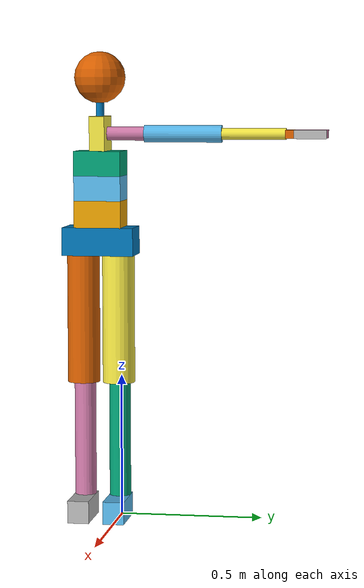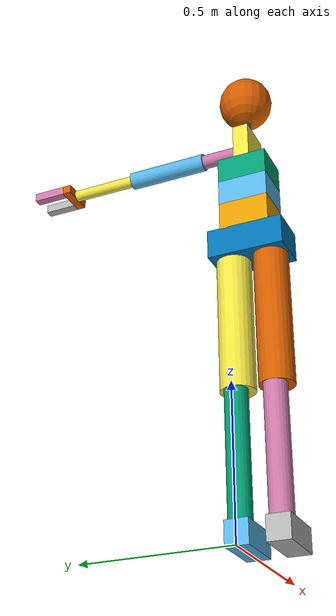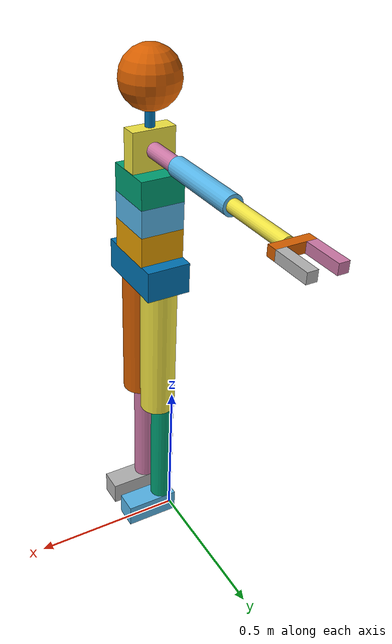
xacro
<?xml version="1.0" ?>

<robot name="mhuman" xmlns:xacro="http://www.ros.org/wiki/xacro">

   <link name="world"/>

   <joint name="jdummy" type="fixed">
     <parent link="world"/>
     <child link="right_foot"/>
   </joint>

   <!-- Lower Body pelvis and both legs and feet -->

   <link name="right_foot">

        <inertial>
          <mass value="0.8086"/>
          <origin xyz="0.08991 0 0.03925" rpy="0 0 0" />
          <inertia ixx="0.00079209" iyy="0.0025944" izz="0.0025558" ixy="0" ixz="0" iyz="0"/>
        </inertial>

        <collision>
          <origin xyz="0.08991 0 0.03925" rpy="0 0 0" />
          <geometry>
             <box size="0.17983    0.074775    0.078509"/>
          </geometry>
        </collision>

        <visual>
          <origin xyz="0.08991 0 0.03925" rpy="0 0 0" />
          <geometry>
             <box size="0.17983    0.074775    0.078509"/>
          </geometry>
        </visual>

   </link>

   <joint name="jright_ankle" type="fixed">
     <origin xyz="0.018694 0 0.078509" rpy="0 0 0"/>
     <parent link="right_foot"/>
     <child link="right_lower_leg"/>
   </joint>

   <link name="right_lower_leg">

        <inertial>
          <mass value="2.2703"/>
          <origin xyz="0.018694 0 0.20304" rpy="0 0 0" />
          <inertia ixx="0.031992" iyy="0.031992" izz="0.0015867" ixy="0" ixz="0" iyz="0"/>
        </inertial>

        <collision>
          <origin xyz="0.018694 0 0.20304" rpy="0 0 0" />
          <geometry>
             <cylinder length="0.40608" radius="0.037388"/>
          </geometry>
        </collision>

        <visual>
          <origin xyz="0.018694 0 0.20304" rpy="0 0 0" />
          <geometry>
             <cylinder length="0.40608" radius="0.037388"/>
          </geometry>
        </visual>
   </link>

   <joint name="jright_knee" type="fixed">
     <origin xyz="0.018694 0 0.40608" rpy="0 0 0"/>
     <parent link="right_lower_leg"/>
     <child link="right_upper_leg"/>
   </joint>

   <link name="right_upper_leg">

        <inertial>
          <mass value="7.775"/>
          <origin xyz="0.018694 0 0.22449" rpy="0 0 0" />
          <inertia ixx="0.13681" iyy="0.13681" izz="0.01241" ixy="0" ixz="0" iyz="0"/>
        </inertial>

        <collision>
          <origin xyz="0.018694 0 0.22449" rpy="0 0 0" />
          <geometry>
             <cylinder length="0.44898" radius="0.0565"/>
          </geometry>
        </collision>

        <visual>
          <origin xyz="0.018694 0 0.22449" rpy="0 0 0" />
          <geometry>
             <cylinder length="0.44898" radius="0.0565"/>
          </geometry>
        </visual>
   </link>

   <joint name="jright_hip" type="fixed">
     <origin xyz="0.018694 0 0.44898" rpy="0 0 0"/>
     <parent link="right_upper_leg"/>
     <child link="pelvis"/>
   </joint>

   <link name="pelvis">

        <inertial>
          <mass value="4.976"/>
          <origin xyz="0 -0.062285 0.0487345" rpy="0 0 0" />
          <inertia ixx="0.029678" iyy="0.011854" izz="0.033653" ixy="0" ixz="0" iyz="0"/>
        </inertial>

        <collision>
          <origin xyz="0 -0.062285 0.0487345" rpy="0 0 0" />
          <geometry>
             <box size="0.13815     0.24914    0.097469"/>
          </geometry>
        </collision>

        <visual>
          <origin xyz="0 -0.062285 0.0487345" rpy="0 0 0" />
          <geometry>
             <box size="0.13815     0.24914    0.097469"/>
          </geometry>
        </visual>

   </link>

   <joint name="jleft_hip" type="fixed">
     <origin xyz="0 -0.118785 0" rpy="0 0 0"/>
     <parent link="pelvis"/>
     <child link="left_upper_leg"/>
   </joint>
   <link name="left_upper_leg">

        <inertial>
          <mass value="7.775"/>
          <origin xyz="0 -0.005785 -0.22449" rpy="0 0 0" />
          <inertia ixx="0.13681" iyy="0.13681" izz="0.01241" ixy="0" ixz="0" iyz="0"/>
        </inertial>

        <collision>
          <origin xyz="0 -0.005785 -0.22449" rpy="0 0 0" />
          <geometry>
             <cylinder length="0.44898" radius="0.0565"/>
          </geometry>
        </collision>

        <visual>
          <origin xyz="0 -0.005785 -0.22449" rpy="0 0 0" />
          <geometry>
             <cylinder length="0.44898" radius="0.0565"/>
          </geometry>
        </visual>

   </link>

   <joint name="jleft_knee" type="fixed">
     <origin xyz="-0.018694 0 -0.44898" rpy="0 0 0"/>
     <parent link="left_upper_leg"/>
     <child link="left_lower_leg"/>
   </joint>
   <link name="left_lower_leg">

        <inertial>
          <mass value="2.2703"/>
          <origin xyz="0 -0.005785 -0.20304" rpy="0 0 0" />
          <inertia ixx="0.031992" iyy="0.031992" izz="0.0015867" ixy="0" ixz="0" iyz="0"/>
        </inertial>

        <collision>
          <origin xyz="0 -0.005785 -0.20304" rpy="0 0 0" />
          <geometry>
             <cylinder length="0.40608" radius="0.037388"/>
          </geometry>
        </collision>

        <visual>
          <origin xyz="0 -0.005785 -0.20304" rpy="0 0 0" />
          <geometry>
             <cylinder length="0.40608" radius="0.037388"/>
          </geometry>
        </visual>

   </link>

   <joint name="jleft_ankle" type="fixed">
     <origin xyz="-0.018694 0 -0.40608" rpy="0 0 0"/>
     <parent link="left_lower_leg"/>
     <child link="left_foot"/>
   </joint>

   <link name="left_foot">

        <inertial>
           <mass value="0.8086"/>
           <origin xyz="0.071216 -0.005785 -0.03925" rpy="0 0 0" />
           <inertia ixx="0.00079209" iyy="0.0025944" izz="0.0025558" ixy="0" ixz="0" iyz="0"/>
        </inertial>

        <collision>
          <origin xyz="0.071216 -0.005785 -0.03925" rpy="0 0 0" />
          <geometry>
             <box size="0.17983    0.074775    0.078509"/>
          </geometry>
        </collision>

        <visual>
          <origin xyz="0.071216 -0.005785 -0.03925" rpy="0 0 0" />
          <geometry>
             <box size="0.17983    0.074775    0.078509"/>
          </geometry>
        </visual>

   </link>

<!-- Upper Body from pelvis to head without arms -->

   <!-- Joint b/w pelvis and Link L5 -->
   <joint name="jtrunk_bottom" type="fixed">
     <origin xyz="0 -0.062285 0.095104" rpy="0 0 0"/>
     <parent link="pelvis"/>
     <child link="trunk_bottom"/>
   </joint>

    <!-- Link L5 -->
    <link name="trunk_bottom">

        <inertial>
           <mass value="6.3444"/>
           <origin xyz="0 0 0.047552" rpy="0 0 0" />
           <inertia ixx="0.018868" iyy="0.014872" izz="0.024177" ixy="0" ixz="0" iyz="0"/>
        </inertial>

        <collision>
          <origin xyz="0 0 0.047552" rpy="0 0 0" />
          <geometry>
             <box size="0.13815     0.16323    0.095104"/>
          </geometry>
        </collision>

        <visual>
          <origin xyz="0 0 0.047552" rpy="0 0 0" />
          <geometry>
             <box size="0.13815     0.16323    0.095104"/>
          </geometry>
        </visual>
   </link>

   <!-- Joint b/w pelvis and Link L3 -->
   <joint name="jtrunk_center" type="fixed">
     <origin xyz="0 0 0.095104" rpy="0 0 0"/>
     <parent link="trunk_bottom"/>
     <child link="trunk_center"/>
   </joint>
   <!-- Link L3 -->
   <link name="trunk_center">

        <inertial>
           <mass value="6.3444"/>
           <origin xyz="0 0 0.042958" rpy="0 0 0" />
           <inertia ixx="0.017989" iyy="0.013993" izz="0.024177" ixy="0" ixz="0" iyz="0"/>
        </inertial>

        <collision>
          <origin xyz="0 0 0.042958" rpy="0 0 0" />
          <geometry>
             <box size="0.13815     0.16323    0.095104"/>
          </geometry>
        </collision>

        <visual>
          <origin xyz="0 0 0.042958" rpy="0 0 0" />
          <geometry>
             <box size="0.13815     0.16323    0.085916"/>
          </geometry>
        </visual>
   </link>

     <!-- Joint b/w pelvis and Link T12 -->
     <joint name="jtrunk_ptop" type="fixed">
     <origin xyz="0 0 0.085916" rpy="0 0 0"/>
     <parent link="trunk_center"/>
     <child link="trunk_ptop"/>
   </joint>
     <!-- Link T12 -->
    <link name="trunk_ptop">

        <inertial>
           <mass value="6.3444"/>
           <origin xyz="0 0 0.042958" rpy="0 0 0" />
           <inertia ixx="0.017989" iyy="0.013993" izz="0.024177" ixy="0" ixz="0" iyz="0"/>
        </inertial>

        <collision>
          <origin xyz="0 0 0.042958" rpy="0 0 0" />
          <geometry>
             <box size="0.13815     0.16323    0.085916"/>
          </geometry>
        </collision>

        <visual>
          <origin xyz="0 0 0.042958" rpy="0 0 0" />
          <geometry>
             <box size="0.13815     0.16323    0.085916"/>
          </geometry>
        </visual>
   </link>

   <!-- Joint b/w pelvis and Link T8 -->
   <joint name="jtrunk_top" type="fixed">
     <origin xyz="0 0 0.085916" rpy="0 0 0"/>
     <parent link="trunk_ptop"/>
     <child link="trunk_top"/>
   </joint>
   <!-- Link T8 -->
   <link name="trunk_top">

        <inertial>
           <mass value="2.488"/>
           <origin xyz="0 0 0.059875" rpy="0 0 0" />
           <inertia ixx="0.0035473" iyy="0.0067278" izz="0.0043289" ixy="0" ixz="0" iyz="0"/>
        </inertial>

        <collision>
          <origin xyz="0 0 0.059875" rpy="0 0 0" />
          <geometry>
             <box size="0.13457    0.052626     0.11975"/>
          </geometry>
        </collision>

        <visual>
          <origin xyz="0 0 0.059875" rpy="0 0 0" />
          <geometry>
             <box size="0.13457    0.052626     0.11975"/>
          </geometry>
        </visual>
   </link>

   <joint name="jneck" type="fixed">
     <origin xyz="0 0 0.11975" rpy="0 0 0"/>
     <parent link="trunk_top"/>
     <child link="neck"/>
   </joint>
   <link name="neck">

        <inertial>
           <mass value="0.7464"/>
           <origin xyz="0 0 0.044626" rpy="0 0 0" />
           <inertia ixx="0.0006461" iyy="0.0006461" izz="0.00030124" ixy="0" ixz="0" iyz="0"/>
        </inertial>

        <collision>
          <origin xyz="0 0 0.044626" rpy="0 0 0" />
          <geometry>
             <cylinder length="0.089252" radius="0.014205"/>
          </geometry>
        </collision>

        <visual>
          <origin xyz="0 0 0.044626" rpy="0 0 0" />
          <geometry>
             <cylinder length="0.089252" radius="0.014205"/>
          </geometry>
        </visual>
   </link>

   <joint name="jhead" type="fixed">
     <origin xyz="0 0 0.089252" rpy="0 0 0"/>
     <parent link="neck"/>
     <child link="head"/>
   </joint>
   <link name="head">

        <inertial>
           <mass value="2.2392"/>
           <origin xyz="0 0 0.0445025" rpy="0 0 0" />
           <inertia ixx="0.0070955" iyy="0.0070955" izz="0.0070955" ixy="0" ixz="0" iyz="0"/>
        </inertial>

        <collision>
          <origin xyz="0 0 0.0445025" rpy="0 0 0" />
          <geometry>
             <sphere radius="0.089005"/>
          </geometry>
        </collision>

          <visual>
          <origin xyz="0 0 0.0445025" rpy="0 0 0" />
          <geometry>
             <sphere radius="0.089005"/>
          </geometry>
        </visual>
   </link>

   <!--  Links from Right shoulder to hand-->

   <joint name="jright_shoulder" type="fixed">
       <origin xyz="0 0.026313 0.059875" rpy="0 0 0"/>
     <parent link="trunk_top"/>
     <child link="right_shoulder"/>
   </joint>
   <link name="right_shoulder">

        <inertial>
           <mass value="1.9282"/>
           <origin xyz="0 0.065235 0" rpy="1.5708 0 0" />
           <inertia ixx="0.0030029" iyy="0.00053578" izz="0.0030029" ixy="0" ixz="0" iyz="0"/>
        </inertial>

        <collision>
          <origin xyz="0 0.065235 0" rpy="1.5708 0 0" />
          <geometry>
             <cylinder length="0.13047" radius="0.023574"/>
          </geometry>
        </collision>

        <visual>
          <origin xyz="0 0.065235 0" rpy="1.5708 0 0" />
          <geometry>
             <cylinder length="0.13047" radius="0.023574"/>
          </geometry>
        </visual>
   </link>

<!--   ***************changes made with dummy link and joints at shoulder start ********************************   -->

    <joint name="jright_shoulder_rotz" type="revolute">
        <origin xyz="0    0.13047           0" rpy="0 0 0"/>
        <parent link="right_shoulder"/>
        <child link="right_upper_arm_f1"/>
        <limit effort="100" velocity="0.5" lower="-1.5708" upper="0.785398" />
        <dynamics damping="0.01" friction="0.01"/>
        <axis xyz="0 0 1" />
    </joint>

   <transmission name="trans_jright_shoulder_rotz">
     <type>transmission_interface/SimpleTransmission</type>
     <joint name="jright_shoulder_rotz">
       <hardwareInterface>hardware_interface/PositionJointInterface</hardwareInterface>
     </joint>
     <actuator name="motor_jright_shoulder_rotz">
       <hardwareInterface>hardware_interface/PositionJointInterface</hardwareInterface>
       <mechanicalReduction>1</mechanicalReduction>
     </actuator>
   </transmission>

    <link name="right_upper_arm_f1">
        <inertial>
            <mass value="0.0001"/>
            <origin xyz="0 0.065235 0" rpy="1.5708 0 0" />
            <inertia ixx="0.0003" iyy="0.0003" izz="0.0003" ixy="0" ixz="0" iyz="0"/>
        </inertial>
    </link>

    <joint name="jright_shoulder_roty" type="revolute">
        <origin xyz="0 0 0" rpy="0 0 0"/>
        <parent link="right_upper_arm_f1"/>
        <child link="right_upper_arm_f2"/>
        <limit effort="100" velocity="0.5" lower="-1.5708" upper="1.5708" />
        <dynamics damping="0.01" friction="0.01"/>
        <axis xyz="0 1 0" />
    </joint>

   <transmission name="trans_jright_shoulder_roty">
     <type>transmission_interface/SimpleTransmission</type>
     <joint name="jright_shoulder_roty">
       <hardwareInterface>hardware_interface/PositionJointInterface</hardwareInterface>
     </joint>
     <actuator name="motor_jright_shoulder_roty">
       <hardwareInterface>hardware_interface/PositionJointInterface</hardwareInterface>
       <mechanicalReduction>1</mechanicalReduction>
     </actuator>
   </transmission>

    <link name="right_upper_arm_f2">
        <inertial>
            <mass value="0.0001"/>
            <origin xyz="0 0.065235 0" rpy="1.5708 0 0" />
            <inertia ixx="0.0003" iyy="0.0003" izz="0.0003" ixy="0" ixz="0" iyz="0"/>
        </inertial>
    </link>

    <joint name="jright_shoulder_rotx" type="revolute">
        <origin xyz="0 0 0" rpy="0 0 0"/>
        <parent link="right_upper_arm_f2"/>
        <child link="right_upper_arm"/>
        <limit effort="100" velocity="0.5" lower="-1.5708" upper="0.5236" />
        <dynamics damping="0.01" friction="0.01"/>
        <axis xyz="1 0 0" />
    </joint>

   <transmission name="trans_jright_shoulder_rotx">
     <type>transmission_interface/SimpleTransmission</type>
     <joint name="jright_shoulder_rotx">
       <hardwareInterface>hardware_interface/PositionJointInterface</hardwareInterface>
     </joint>
     <actuator name="motor_jright_shoulder_rotx">
       <hardwareInterface>hardware_interface/PositionJointInterface</hardwareInterface>
       <mechanicalReduction>1</mechanicalReduction>
     </actuator>
   </transmission>

<!--   ***************changes made with dummy link and joints at shoulder end *********************************   -->

   <link name="right_upper_arm">

        <inertial>
           <mass value="1.866"/>
           <origin xyz="0 0.13497 0" rpy="1.5708 0 0" />
           <inertia ixx="0.011736" iyy="0.00080917" izz="0.011736" ixy="0" ixz="0" iyz="0"/>
        </inertial>

        <collision>
          <origin xyz="0 0.13497 0" rpy="1.5708 0 0" />
          <geometry>
             <cylinder length="0.26994" radius="0.029449"/>
          </geometry>
        </collision>

        <visual>
          <origin xyz="0 0.13497 0" rpy="1.5708 0 0" />
          <geometry>
             <cylinder length="0.26994" radius="0.029449"/>
          </geometry>
        </visual>
   </link>

   <joint name="jright_forearm_rotz" type="revolute">
     <axis xyz="0 0 1"/>
     <limit effort="100" velocity="0.5" lower="-2.5307" upper="0" />
     <dynamics damping="0.01" friction="0.01"/>
     <origin xyz="0 0.26994 0" rpy="0 0 0"/>
     <parent link="right_upper_arm"/>
     <child link="right_forearm_f1"/>
   </joint>

   <transmission name="trans_jright_forearm_rotz">
     <type>transmission_interface/SimpleTransmission</type>
     <joint name="jright_forearm_rotz">
       <hardwareInterface>hardware_interface/PositionJointInterface</hardwareInterface>
     </joint>
     <actuator name="motor_jright_forearm_rotz">
       <hardwareInterface>hardware_interface/PositionJointInterface</hardwareInterface>
       <mechanicalReduction>1</mechanicalReduction>
     </actuator>
   </transmission>
<!-- **************** changes made with dummy link and joints at elbow start ***************************  -->

    <link name="right_forearm_f1">
        <inertial>
            <mass value="0.0001"/>
            <origin xyz="0 0 0" rpy="0 0 0" />
            <inertia ixx="0.0003" iyy="0.0003" izz="0.0003" ixy="0" ixz="0" iyz="0"/>
        </inertial>
    </link>

     <joint name="jright_forearm_roty" type="revolute">
        <origin xyz="0    0           0" rpy="0 0 0"/>
        <parent link="right_forearm_f1"/>
        <child link="right_forearm"/>
        <limit effort="100" velocity="0.5" lower="-1.5708" upper="1.48353" />
        <dynamics damping="0.01" friction="0.01"/>
        <axis xyz="0 1 0" />
    </joint>

   <transmission name="trans_jright_forearm_roty">
     <type>transmission_interface/SimpleTransmission</type>
     <joint name="jright_forearm_roty">
       <hardwareInterface>hardware_interface/PositionJointInterface</hardwareInterface>
     </joint>
     <actuator name="motor_jright_forearm_roty">
       <hardwareInterface>hardware_interface/PositionJointInterface</hardwareInterface>
       <mechanicalReduction>1</mechanicalReduction>
     </actuator>
   </transmission>

<!-- **************** changes made with dummy link and joints at elbow end ***************************  -->

   <link name="right_forearm">

        <inertial>
           <mass value="1.244"/>
           <origin xyz="0 0.111235 0" rpy="-1.5708 0 0" />
           <inertia ixx="0.0052508" iyy="0.00023975" izz="0.0052508" ixy="0" ixz="0" iyz="0"/>
        </inertial>

        <collision>
          <origin xyz="0 0.111235 0" rpy="-1.5708 0 0" />
          <geometry>
             <cylinder length="0.22247" radius="0.019633"/>
          </geometry>
        </collision>

        <visual>
          <origin xyz="0 0.111235 0" rpy="-1.5708 0 0" />
          <geometry>
             <cylinder length="0.22247" radius="0.019633"/>
          </geometry>
        </visual>
   </link>

   <joint name="jright_wrist_rotx" type="revolute">
     <axis xyz="1 0 0"/>
     <limit effort="100" velocity="0.5" lower="-0.872665" upper="1.0472" />
     <dynamics damping="0.01" friction="0.01"/>
     <origin xyz="0 0.22247 0" rpy="0 -1.5708 0"/>
     <parent link="right_forearm"/>
     <child link="right_wrist_f1"/>
   </joint>

   <transmission name="trans_jright_wrist_rotx">
     <type>transmission_interface/SimpleTransmission</type>
     <joint name="jright_wrist_rotx">
       <hardwareInterface>hardware_interface/PositionJointInterface</hardwareInterface>
     </joint>
     <actuator name="motor_jright_wrist_rotx">
       <hardwareInterface>hardware_interface/PositionJointInterface</hardwareInterface>
       <mechanicalReduction>1</mechanicalReduction>
     </actuator>
   </transmission>

<!-- **************** changes made with dummy link and joints at wrist start ***************************  -->

    <link name="right_wrist_f1">
        <inertial>
            <mass value="0.0001"/>
            <origin xyz="0 0 0" rpy="0 0 0" />
            <inertia ixx="0.0003" iyy="0.0003" izz="0.0003" ixy="0" ixz="0" iyz="0"/>
        </inertial>
    </link>

    <joint name="jright_wrist_rotz" type="revolute">
        <origin xyz="0 0 0" rpy="0 0 0"/>
        <parent link="right_wrist_f1"/>
        <child link="right_wrist"/>
        <limit effort="100" velocity="0.5" lower="-0.523599" upper="0.349066" />
        <dynamics damping="0.01" friction="0.01"/>
        <axis xyz="0 0 1" />
    </joint>

   <transmission name="trans_jright_wrist_rotz">
     <type>transmission_interface/SimpleTransmission</type>
     <joint name="jright_wrist_rotz">
       <hardwareInterface>hardware_interface/PositionJointInterface</hardwareInterface>
     </joint>
     <actuator name="motor_jright_wrist_rotz">
       <hardwareInterface>hardware_interface/PositionJointInterface</hardwareInterface>
       <mechanicalReduction>1</mechanicalReduction>
     </actuator>
   </transmission>

<!-- **************** changes made with dummy link and joints at wrist end ***************************  -->

   <link name="right_wrist">

        <inertial>
           <mass value="0.0492"/>
           <origin xyz="0 0.0147495 0" rpy="-1.5708 0 0" />
           <inertia ixx="0.00005448" iyy="0.000007111" izz="0.00005448" ixy="0" ixz="0" iyz="0"/>
        </inertial>

        <collision>
          <origin xyz="0 0.0147495 0" rpy="-1.5708 0 0" />
          <geometry>
             <box size="0.029449 0.11145 0.029449"/>
          </geometry>
        </collision>

        <visual>
          <origin xyz="0 0.0147495 0" rpy="-1.5708 0 0" />
          <geometry>
             <box size="0.029449 0.11145 0.029449"/>
          </geometry>
        </visual>

   </link>

   <joint name="jleft_grip_rhand" type="fixed">
     <origin xyz="0 0.029449 0.0410005" rpy="0 0 0"/>
     <parent link="right_wrist"/>
     <child link="left_grip_rhand"/>
   </joint>

  <link name="left_grip_rhand">

        <inertial>
           <mass value="0.0492"/>
           <origin xyz="0 0.055725 0" rpy="0 0 0" />
           <inertia ixx="0.00005448" iyy="0.000007111" izz="0.00005448" ixy="0" ixz="0" iyz="0"/>
        </inertial>

        <collision>
          <origin xyz="0 0.055725 0" rpy="0 0 0" />
          <geometry>
             <box size="0.029449 0.11145 0.029449"/>
          </geometry>
        </collision>

        <visual>
          <origin xyz="0 0.055725 0" rpy="0 0 0" />
          <geometry>
             <box size="0.029449 0.11145 0.029449"/>
          </geometry>
        </visual>
   </link>

   <joint name="jright_grip_rhand" type="prismatic">
     <axis xyz="0 0 1"/>
     <limit effort="30" velocity="0.2" lower="0" upper="0.04" />
     <origin xyz="0 0.029449 -0.0410005" rpy="0 0 0"/>
     <parent link="right_wrist"/>
     <child link="right_grip_rhand"/>
   </joint>

   <transmission name="trans_jright_grip_rhand">
     <type>transmission_interface/SimpleTransmission</type>
     <joint name="jright_grip_rhand">
       <hardwareInterface>hardware_interface/PositionJointInterface</hardwareInterface>
     </joint>
     <actuator name="motor_jright_grip_rhand">
       <hardwareInterface>hardware_interface/PositionJointInterface</hardwareInterface>
       <mechanicalReduction>1</mechanicalReduction>
     </actuator>
   </transmission>

   <link name="right_grip_rhand">

        <inertial>
           <mass value="0.0492"/>
           <origin xyz="0 0.055725 0" rpy="0 0 0" />
           <inertia ixx="0.00005448" iyy="0.000007111" izz="0.00005448" ixy="0" ixz="0" iyz="0"/>
        </inertial>

        <collision>
          <origin xyz="0 0.055725 0" rpy="0 0 0" />
          <geometry>
             <box size="0.029449 0.11145 0.029449"/>
          </geometry>
        </collision>

        <visual>
          <origin xyz="0 0.055725 0" rpy="0 0 0" />
          <geometry>
             <box size="0.029449 0.11145 0.029449"/>
          </geometry>
        </visual>
   </link>

   <gazebo>
      <plugin name="gazebo_ros_control" filename="libgazebo_ros_control.so">
       <robotNamespace>/mhuman</robotNamespace>
       <legacyModeNS>true</legacyModeNS>
      </plugin>
   </gazebo>
   <gazebo>
      <plugin name="gazebo_grasp_fix" filename="libgazebo_grasp_fix.so">
          <arm>
           <arm_name>right_arm</arm_name>
           <palm_link>right_wrist</palm_link>
           <gripper_link>right_grip_rhand</gripper_link>
          </arm>
          <forces_angle_tolerance>100</forces_angle_tolerance>
          <update_rate>4</update_rate>
          <grip_count_threshold>4</grip_count_threshold>
          <max_grip_count>8</max_grip_count>
          <release_tolerance>0.005</release_tolerance>
          <disable_collisions_on_attach>false</disable_collisions_on_attach>
          <contact_topic>__default_topic__</contact_topic>
      </plugin>
    </gazebo>

</robot>
